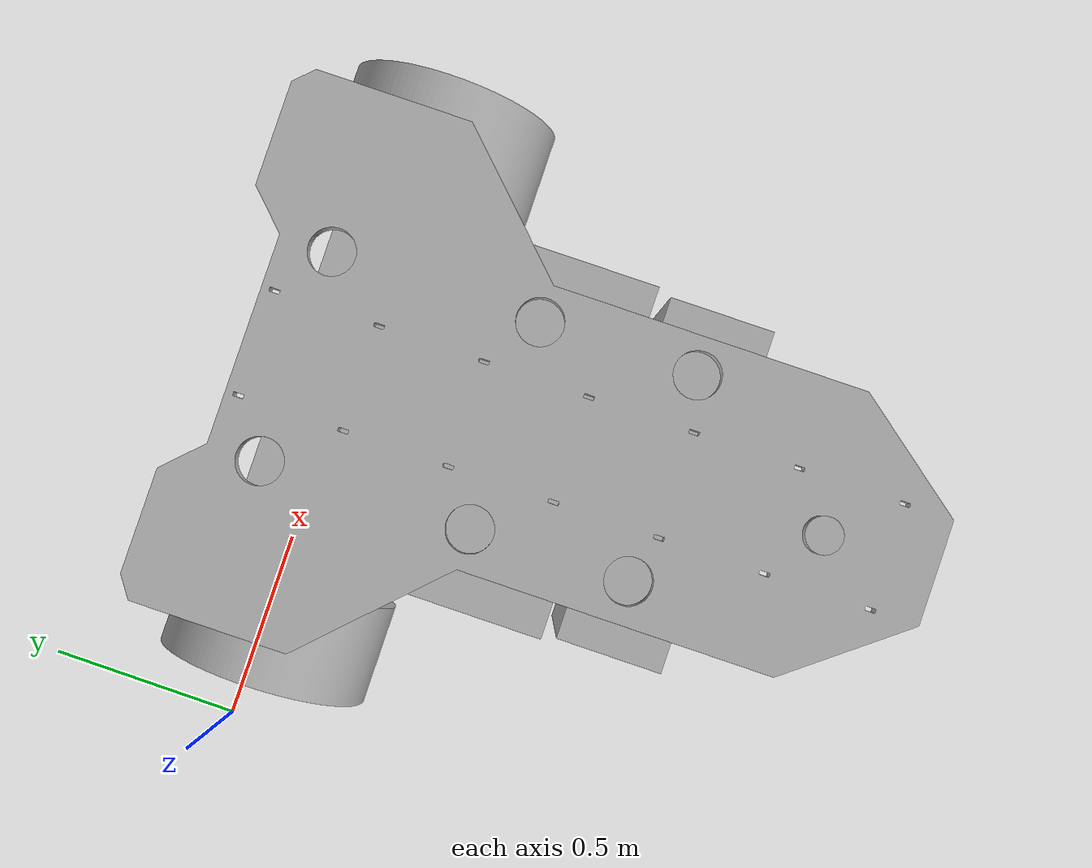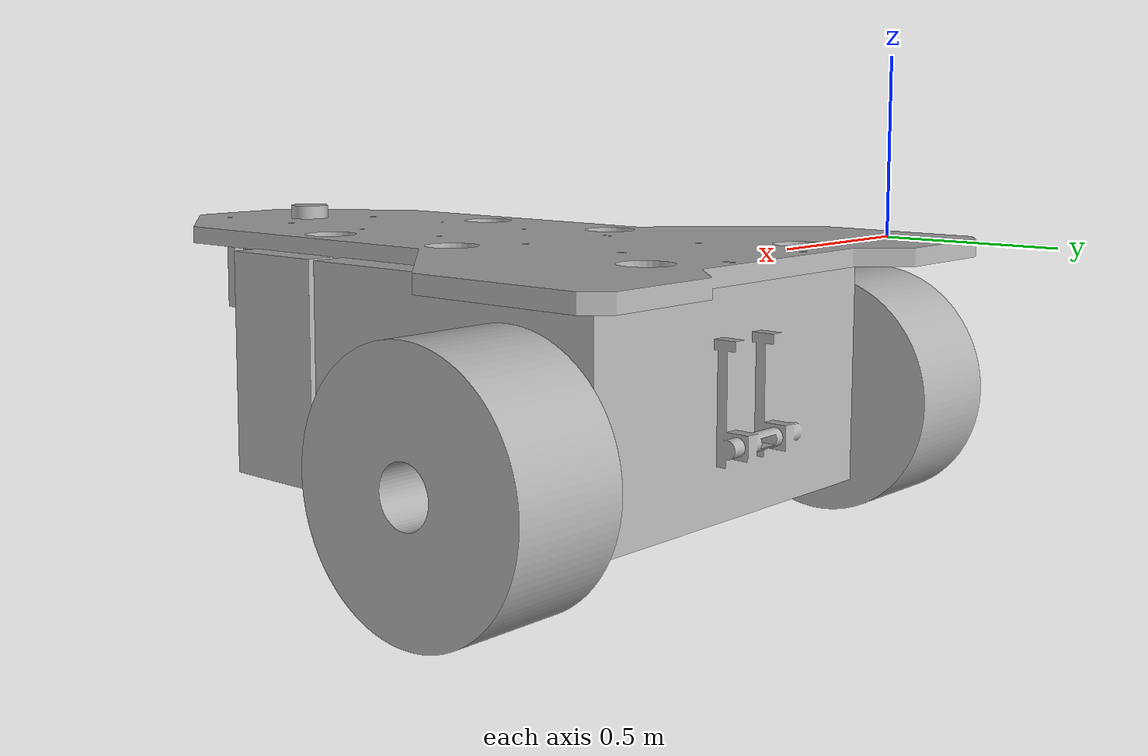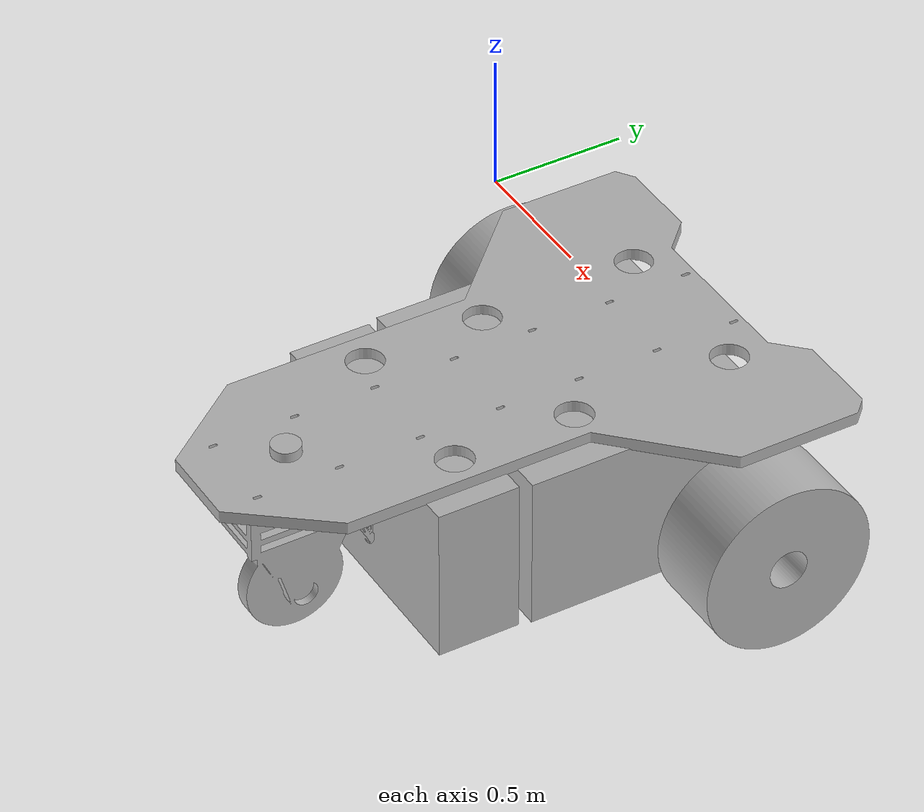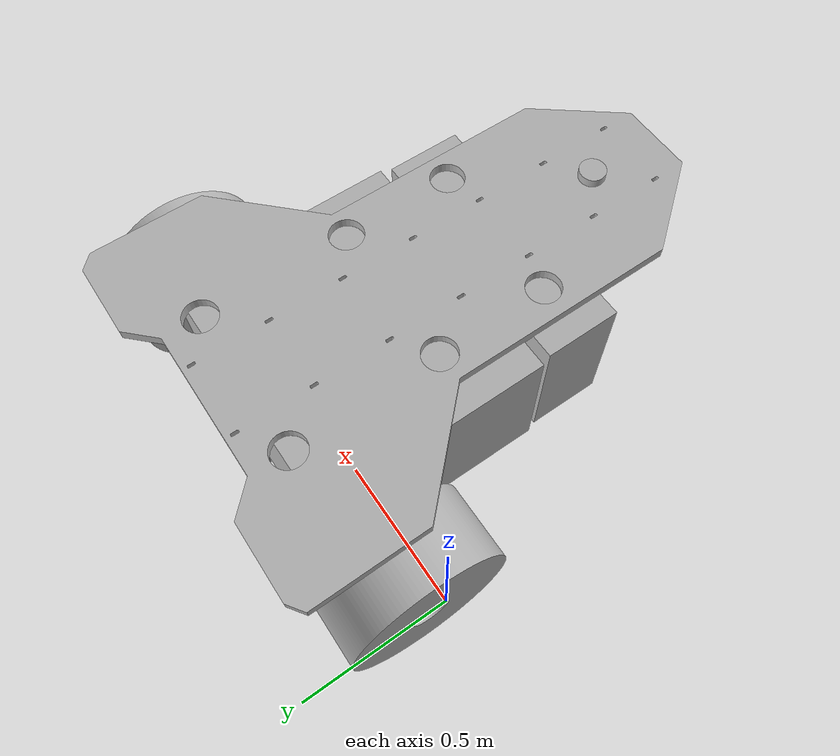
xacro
<?xml version="1.0" ?>
<robot name="innok" xmlns:xacro="http://www.ros.org/wiki/xacro">

  <!-- Define scaling properties -->
  <xacro:property name="scale_factor" value="3"/>
  <xacro:property name="scale_mass" value="${scale_factor**3}"/>
  <xacro:property name="scale_inertia" value="${scale_factor**5}"/>

  <!-- Include other files -->
  <xacro:include filename="$(find innok_description)/urdf/materials.xacro" />
  <xacro:include filename="$(find innok_description)/urdf/innok.trans" />
  <xacro:include filename="$(find innok_description)/urdf/innok.gazebo" />

  <!-- Base link -->
  <link name="base_link">
    <inertial>
      <origin xyz="${0.2974080430359136 * scale_factor} ${-0.09395788555264112 * scale_factor} ${-0.12078975186729625 * scale_factor}" rpy="0 0 0"/>
      <mass value="${12.957373912333544 * scale_mass}"/>
      <inertia ixx="${0.152252 * scale_inertia}" iyy="${0.111083 * scale_inertia}" izz="${0.241781 * scale_inertia}" ixy="${-0.016405 * scale_inertia}" iyz="${0.006506 * scale_inertia}" ixz="${0.008529 * scale_inertia}"/>
    </inertial>
    <visual>
      <origin xyz="0 0 0" rpy="0 0 0"/>
      <geometry>
        <mesh filename="file://$(find innok_description)/meshes/base_link.stl" scale="${0.001 * scale_factor} ${0.001 * scale_factor} ${0.001 * scale_factor}"/>
      </geometry>
      <material name="silver"/>
    </visual>
    <collision>
      <origin xyz="0 0 0" rpy="0 0 0"/>
      <geometry>
        <mesh filename="file://$(find innok_description)/meshes/base_link.stl" scale="${0.001 * scale_factor} ${0.001 * scale_factor} ${0.001 * scale_factor}"/>
      </geometry>
    </collision>
  </link>

  <!-- Driver link -->
  <link name="driver_1_1_1_1_1_1_1">
    <inertial>
      <origin xyz="${0.0 * scale_factor} ${0.0499996988769717 * scale_factor} ${0.031000000000000014 * scale_factor}" rpy="0 0 0"/>
      <mass value="${50.17240768770195 * scale_mass}"/>
      <inertia ixx="${0.200794 * scale_inertia}" iyy="${0.608148 * scale_inertia}" izz="${0.490974 * scale_inertia}" ixy="0.0" iyz="0.0" ixz="0.0"/>
    </inertial>
    <visual>
      <origin xyz="${-0.32 * scale_factor} ${0.35568 * scale_factor} ${0.13 * scale_factor}" rpy="0 0 0"/>
      <geometry>
        <mesh filename="file://$(find innok_description)/meshes/driver_1_1_1_1_1_1_1.stl" scale="${0.001 * scale_factor} ${0.001 * scale_factor} ${0.001 * scale_factor}"/>
      </geometry>
      <material name="silver"/>
    </visual>
    <collision>
      <origin xyz="${-0.32 * scale_factor} ${0.35568 * scale_factor} ${0.13 * scale_factor}" rpy="0 0 0"/>
      <geometry>
        <mesh filename="file://$(find innok_description)/meshes/driver_1_1_1_1_1_1_1.stl" scale="${0.001 * scale_factor} ${0.001 * scale_factor} ${0.001 * scale_factor}"/>
      </geometry>
    </collision>
  </link>

  <!-- Charger link -->
  <link name="charger_1_1_1_1_1_1_1">
    <inertial>
      <origin xyz="${-4.672575242226085e-06 * scale_factor} ${0.0862942619820953 * scale_factor} ${0.03311136861462326 * scale_factor}" rpy="0 0 0"/>
      <mass value="${145.14842696339159 * scale_mass}"/>
      <inertia ixx="${1.569938 * scale_inertia}" iyy="${1.890326 * scale_inertia}" izz="${2.532494 * scale_inertia}" ixy="${0.000114 * scale_inertia}" iyz="${-0.015594 * scale_inertia}" ixz="${-1.1e-05 * scale_inertia}"/>
    </inertial>
    <visual>
      <origin xyz="${-0.32 * scale_factor} ${0.180679 * scale_factor} ${0.13 * scale_factor}" rpy="0 0 0"/>
      <geometry>
        <mesh filename="file://$(find innok_description)/meshes/charger_1_1_1_1_1_1_1.stl" scale="${0.001 * scale_factor} ${0.001 * scale_factor} ${0.001 * scale_factor}"/>
      </geometry>
      <material name="silver"/>
    </visual>
    <collision>
      <origin xyz="${-0.32 * scale_factor} ${0.180679 * scale_factor} ${0.13 * scale_factor}" rpy="0 0 0"/>
      <geometry>
        <mesh filename="file://$(find innok_description)/meshes/charger_1_1_1_1_1_1_1.stl" scale="${0.001 * scale_factor} ${0.001 * scale_factor} ${0.001 * scale_factor}"/>
      </geometry>
    </collision>
  </link>

  <!-- Topface link -->
  <link name="topface_1_1_1_1_1_1_1">
    <inertial>
      <origin xyz="${0.09680450975620933 * scale_factor} ${-0.006250214465135462 * scale_factor} ${0.06750108102149371 * scale_factor}" rpy="0 0 0"/>
      <mass value="${25.02762851051116 * scale_mass}"/>
      <inertia ixx="${0.921381 * scale_inertia}" iyy="${0.33928 * scale_inertia}" izz="${1.259723 * scale_inertia}" ixy="${0.002725 * scale_inertia}" iyz="${7e-06 * scale_inertia}" ixz="${-1e-06 * scale_inertia}"/>
    </inertial>
    <visual>
      <origin xyz="${-0.225 * scale_factor} ${0.15 * scale_factor} ${0.062501 * scale_factor}" rpy="0 0 0"/>
      <geometry>
        <mesh filename="file://$(find innok_description)/meshes/topface_1_1_1_1_1_1_1.stl" scale="${0.001 * scale_factor} ${0.001 * scale_factor} ${0.001 * scale_factor}"/>
      </geometry>
      <material name="silver"/>
    </visual>
    <collision>
      <origin xyz="${-0.225 * scale_factor} ${0.15 * scale_factor} ${0.062501 * scale_factor}" rpy="0 0 0"/>
      <geometry>
        <mesh filename="file://$(find innok_description)/meshes/topface_1_1_1_1_1_1_1.stl" scale="${0.001 * scale_factor} ${0.001 * scale_factor} ${0.001 * scale_factor}"/>
      </geometry>
    </collision>
  </link>

  <!-- Right wheel link -->
  <link name="rightwheel_1_1_1_1_1_1_1">
    <inertial>
      <origin xyz="${-0.04999999999999999 * scale_factor} ${6.365927085732331e-08 * scale_factor} ${-1.0905921193904433e-08 * scale_factor}" rpy="0 0 0"/>
      <mass value="${25.7688037853274 * scale_mass}"/>
      <inertia ixx="${0.149472 * scale_inertia}" iyy="${0.09621 * scale_inertia}" izz="${0.09621 * scale_inertia}" ixy="0.0" iyz="0.0" ixz="0.0"/>
    </inertial>
    <visual>
      <origin xyz="${-0.12 * scale_factor} ${-0.004381 * scale_factor} ${0.129789 * scale_factor}" rpy="0 0 0"/>
      <geometry>
        <mesh filename="file://$(find innok_description)/meshes/rightwheel_1_1_1_1_1_1_1.stl" scale="${0.001 * scale_factor} ${0.001 * scale_factor} ${0.001 * scale_factor}"/>
      </geometry>
      <material name="silver"/>
    </visual>
    <collision>
      <origin xyz="${-0.12 * scale_factor} ${-0.004381 * scale_factor} ${0.129789 * scale_factor}" rpy="0 0 0"/>
      <geometry>
        <mesh filename="file://$(find innok_description)/meshes/rightwheel_1_1_1_1_1_1_1.stl" scale="${0.001 * scale_factor} ${0.001 * scale_factor} ${0.001 * scale_factor}"/>
      </geometry>
    </collision>
  </link>

  <!-- Left wheel link -->
  <link name="leftwheel_1_1_1_1_1_1_1">
    <inertial>
      <origin xyz="${0.050000000000000044 * scale_factor} ${6.365927166657182e-08 * scale_factor} ${-1.0905921249415584e-08 * scale_factor}" rpy="0 0 0"/>
      <mass value="${25.7688037853274 * scale_mass}"/>
      <inertia ixx="${0.149472 * scale_inertia}" iyy="${0.09621 * scale_inertia}" izz="${0.09621 * scale_inertia}" ixy="0.0" iyz="0.0" ixz="0.0"/>
    </inertial>
    <visual>
      <origin xyz="${-0.52 * scale_factor} ${-0.004381 * scale_factor} ${0.129789 * scale_factor}" rpy="0 0 0"/>
      <geometry>
        <mesh filename="file://$(find innok_description)/meshes/leftwheel_1_1_1_1_1_1_1.stl" scale="${0.001 * scale_factor} ${0.001 * scale_factor} ${0.001 * scale_factor}"/>
      </geometry>
      <material name="silver"/>
    </visual>
    <collision>
      <origin xyz="${-0.52 * scale_factor} ${-0.004381 * scale_factor} ${0.129789 * scale_factor}" rpy="0 0 0"/>
      <geometry>
        <mesh filename="file://$(find innok_description)/meshes/leftwheel_1_1_1_1_1_1_1.stl" scale="${0.001 * scale_factor} ${0.001 * scale_factor} ${0.001 * scale_factor}"/>
      </geometry>
    </collision>
  </link>

  <!-- Front wheel holder link -->
  <link name="frontwheelholder_1_1_1_1_1_1_1">
    <inertial>
      <origin xyz="${0.0008961677494441767 * scale_factor} ${-0.00038983819573679135 * scale_factor} ${-0.0888252580380676 * scale_factor}" rpy="0 0 0"/>
      <mass value="${10.000875099038883 * scale_mass}"/>
      <inertia ixx="${0.040521 * scale_inertia}" iyy="${0.03414 * scale_inertia}" izz="${0.015364 * scale_inertia}" ixy="${1.7e-05 * scale_inertia}" iyz="${0.00016 * scale_inertia}" ixz="${0.000169 * scale_inertia}"/>
    </inertial>
    <visual>
      <origin xyz="${-0.321653 * scale_factor} ${0.450939 * scale_factor} ${-0.012499 * scale_factor}" rpy="0 0 0"/>
      <geometry>
        <mesh filename="file://$(find innok_description)/meshes/frontwheelholder_1_1_1_1_1_1_1.stl" scale="${0.001 * scale_factor} ${0.001 * scale_factor} ${0.001 * scale_factor}"/>
      </geometry>
      <material name="silver"/>
    </visual>
    <collision>
      <origin xyz="${-0.321653 * scale_factor} ${0.450939 * scale_factor} ${-0.012499 * scale_factor}" rpy="0 0 0"/>
      <geometry>
        <mesh filename="file://$(find innok_description)/meshes/frontwheelholder_1_1_1_1_1_1_1.stl" scale="${0.001 * scale_factor} ${0.001 * scale_factor} ${0.001 * scale_factor}"/>
      </geometry>
    </collision>
  </link>

  <!-- Joints -->
  <joint name="Rigid 70" type="fixed">
    <origin xyz="${0.32 * scale_factor} ${-0.35568 * scale_factor} ${-0.13 * scale_factor}" rpy="0 0 0"/>
    <parent link="base_link"/>
    <child link="driver_1_1_1_1_1_1_1"/>
  </joint>

  <joint name="Rigid 71" type="fixed">
    <origin xyz="${0.32 * scale_factor} ${-0.180679 * scale_factor} ${-0.13 * scale_factor}" rpy="0 0 0"/>
    <parent link="base_link"/>
    <child link="charger_1_1_1_1_1_1_1"/>
  </joint>

  <joint name="Rigid 72" type="fixed">
    <origin xyz="${0.225 * scale_factor} ${-0.15 * scale_factor} ${-0.062501 * scale_factor}" rpy="0 0 0"/>
    <parent link="base_link"/>
    <child link="topface_1_1_1_1_1_1_1"/>
  </joint>

  <joint name="LEFT WHEEL" type="fixed">
    <origin xyz="${0.12 * scale_factor} ${0.004381 * scale_factor} ${-0.129789 * scale_factor}" rpy="0 0 0"/>
    <parent link="base_link"/>
    <child link="rightwheel_1_1_1_1_1_1_1"/>
  </joint>

  <joint name="RIGHT WHEEL" type="fixed">
    <origin xyz="${0.52 * scale_factor} ${0.004381 * scale_factor} ${-0.129789 * scale_factor}" rpy="0 0 0"/>
    <parent link="base_link"/>
    <child link="leftwheel_1_1_1_1_1_1_1"/>
  </joint>

  <joint name="FRONT WHEEL" type="continuous">
    <origin xyz="${0.096653 * scale_factor} ${-0.300939 * scale_factor} ${0.075 * scale_factor}" rpy="0 0 0"/>
    <parent link="topface_1_1_1_1_1_1_1"/>
    <child link="frontwheelholder_1_1_1_1_1_1_1"/>
    <axis xyz="0 0 1"/>
  </joint>

</robot>

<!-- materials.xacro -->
<robot name="innok" xmlns:xacro="http://www.ros.org/wiki/xacro" >

<material name="silver">
  <color rgba="0.700 0.700 0.700 1.000"/>
</material>

</robot>

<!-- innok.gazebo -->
<robot name="innok" xmlns:xacro="http://www.ros.org/wiki/xacro" >

<xacro:property name="body_color" value="Gazebo/Silver" />

<gazebo>
  <plugin name="control" filename="libgazebo_ros_control.so"/>
</gazebo>
<gazebo reference="base_link">
  <material>${body_color}</material>
  <mu1>0.2</mu1>
  <mu2>0.2</mu2>
  <self_collide>true</self_collide>
  <gravity>true</gravity>
</gazebo>

<gazebo reference="driver_1_1_1_1_1_1_1">
  <material>${body_color}</material>
  <mu1>0.2</mu1>
  <mu2>0.2</mu2>
  <self_collide>true</self_collide>
</gazebo>

<gazebo reference="charger_1_1_1_1_1_1_1">
  <material>${body_color}</material>
  <mu1>0.2</mu1>
  <mu2>0.2</mu2>
  <self_collide>true</self_collide>
</gazebo>

<gazebo reference="topface_1_1_1_1_1_1_1">
  <material>${body_color}</material>
  <mu1>0.2</mu1>
  <mu2>0.2</mu2>
  <self_collide>true</self_collide>
</gazebo>

<gazebo reference="rightwheel_1_1_1_1_1_1_1">
  <material>${body_color}</material>
  <mu1>0.2</mu1>
  <mu2>0.2</mu2>
  <self_collide>true</self_collide>
</gazebo>

<gazebo reference="leftwheel_1_1_1_1_1_1_1">
  <material>${body_color}</material>
  <mu1>0.2</mu1>
  <mu2>0.2</mu2>
  <self_collide>true</self_collide>
</gazebo>

<gazebo reference="frontwheelholder_1_1_1_1_1_1_1">
  <material>${body_color}</material>
  <mu1>0.2</mu1>
  <mu2>0.2</mu2>
  <self_collide>true</self_collide>
</gazebo>

</robot>
